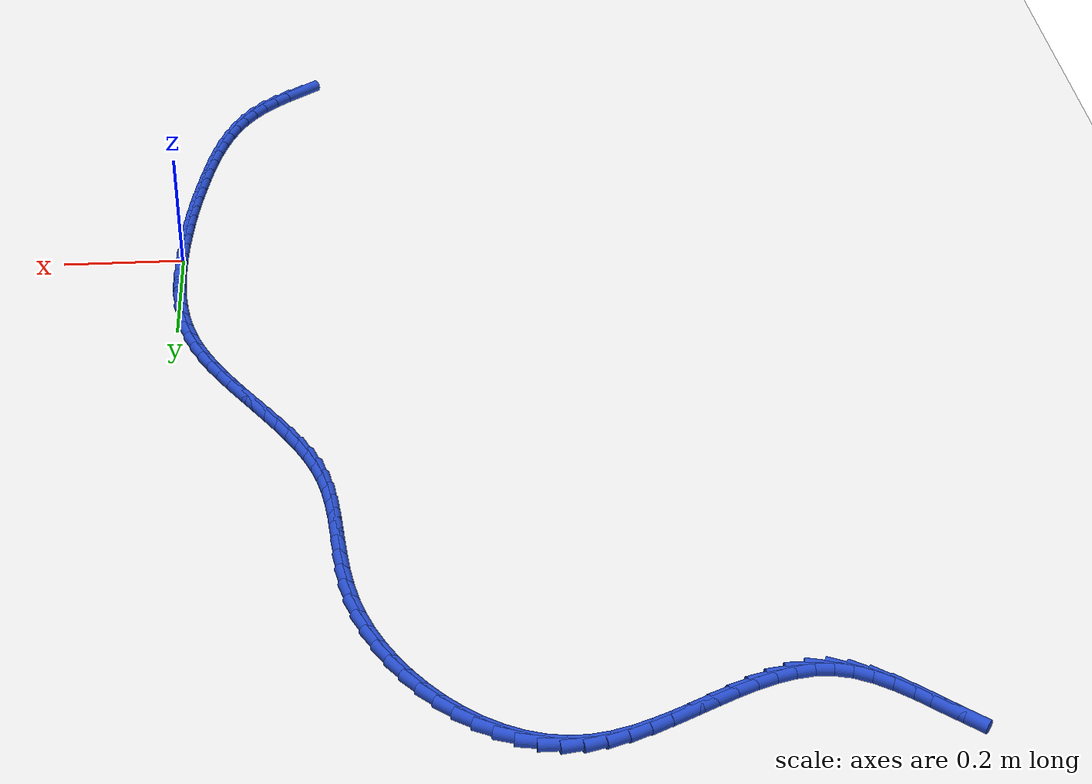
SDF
<sdf version="1.6">
 <world name="default">
  <model name="ground_plane">
   <static>1</static>
   <link name="link">
    <collision name="collision">
     <geometry><plane><normal>0 0 1</normal><size>100 100</size></plane></geometry>
     <surface><friction><ode><mu>100</mu><mu2>50</mu2></ode></friction></surface>
    </collision>
    <visual name="visual">
     <cast_shadows>0</cast_shadows>
     <geometry><plane><normal>0 0 1</normal><size>100 100</size></plane></geometry>
     <material>
      <script><uri>file://media/materials/scripts/gazebo.material</uri><name>Gazebo/WhiteGlow</name></script>
     </material>
    </visual>
   </link>
  </model>
  <model name="line">
   <link name="link_0">
    <pose>8.239936510889834e-18 7.632783294297951e-17 0.01 0 1.57 1.5415442032016824</pose>
    <collision name="collision">
     <geometry><cylinder><radius>0.01</radius><length>0.08</length></cylinder></geometry>
    </collision>
    <visual name="visual">
     <material>
      <script><name>Gazebo/Blue</name><uri>file://media/materials/scripts/gazebo.material</uri></script>
     </material>
     <geometry><cylinder><radius>0.01</radius><length>0.08</length></cylinder></geometry>
    </visual>
   </link>
   <link name="link_1">
    <pose>0.0008711462181971203 0.029772119796999546 0.01 0 1.57 1.569325769403942</pose>
    <collision name="collision">
     <geometry><cylinder><radius>0.01</radius><length>0.08</length></cylinder></geometry>
    </collision>
    <visual name="visual">
     <material>
      <script><name>Gazebo/Blue</name><uri>file://media/materials/scripts/gazebo.material</uri></script>
     </material>
     <geometry><cylinder><radius>0.01</radius><length>0.08</length></cylinder></geometry>
    </visual>
   </link>
   <link name="link_2">
    <pose>0.0009151389869300071 0.0596878084273487 0.01 0 1.57 -1.537992764220976</pose>
    <collision name="collision">
     <geometry><cylinder><radius>0.01</radius><length>0.08</length></cylinder></geometry>
    </collision>
    <visual name="visual">
     <material>
      <script><name>Gazebo/Blue</name><uri>file://media/materials/scripts/gazebo.material</uri></script>
     </material>
     <geometry><cylinder><radius>0.01</radius><length>0.08</length></cylinder></geometry>
    </visual>
   </link>
   <link name="link_3">
    <pose>-6.68812110246541e-05 0.0896134583755524 0.01 0 1.57 -1.4968794196541226</pose>
    <collision name="collision">
     <geometry><cylinder><radius>0.01</radius><length>0.08</length></cylinder></geometry>
    </collision>
    <visual name="visual">
     <material>
      <script><name>Gazebo/Blue</name><uri>file://media/materials/scripts/gazebo.material</uri></script>
     </material>
     <geometry><cylinder><radius>0.01</radius><length>0.08</length></cylinder></geometry>
    </visual>
   </link>
   <link name="link_4">
    <pose>-0.0022737738928901895 0.11941546212611549 0.01 0 1.57 -1.448523730324683</pose>
    <collision name="collision">
     <geometry><cylinder><radius>0.01</radius><length>0.08</length></cylinder></geometry>
    </collision>
    <visual name="visual">
     <material>
      <script><name>Gazebo/Blue</name><uri>file://media/materials/scripts/gazebo.material</uri></script>
     </material>
     <geometry><cylinder><radius>0.01</radius><length>0.08</length></cylinder></geometry>
    </visual>
   </link>
   <link name="link_5">
    <pose>-0.005904398575889921 0.1489602121635429 0.01 0 1.57 -1.3925201223424315</pose>
    <collision name="collision">
     <geometry><cylinder><radius>0.01</radius><length>0.08</length></cylinder></geometry>
    </collision>
    <visual name="visual">
     <material>
      <script><name>Gazebo/Blue</name><uri>file://media/materials/scripts/gazebo.material</uri></script>
     </material>
     <geometry><cylinder><radius>0.01</radius><length>0.08</length></cylinder></geometry>
    </visual>
   </link>
   <link name="link_6">
    <pose>-0.011157614777247174 0.17811410097233937 0.01 0 1.57 -1.3285378208815364</pose>
    <collision name="collision">
     <geometry><cylinder><radius>0.01</radius><length>0.08</length></cylinder></geometry>
    </collision>
    <visual name="visual">
     <material>
      <script><name>Gazebo/Blue</name><uri>file://media/materials/scripts/gazebo.material</uri></script>
     </material>
     <geometry><cylinder><radius>0.01</radius><length>0.08</length></cylinder></geometry>
    </visual>
   </link>
   <link name="link_7">
    <pose>-0.018232282014185273 0.2067435210370099 0.01 0 1.57 -1.25642568086422</pose>
    <collision name="collision">
     <geometry><cylinder><radius>0.01</radius><length>0.08</length></cylinder></geometry>
    </collision>
    <visual name="visual">
     <material>
      <script><name>Gazebo/Blue</name><uri>file://media/materials/scripts/gazebo.material</uri></script>
     </material>
     <geometry><cylinder><radius>0.01</radius><length>0.08</length></cylinder></geometry>
    </visual>
   </link>
   <link name="link_8">
    <pose>-0.02732725980392754 0.23471486484205925 0.01 0 1.57 -1.178316283309899</pose>
    <collision name="collision">
     <geometry><cylinder><radius>0.01</radius><length>0.08</length></cylinder></geometry>
    </collision>
    <visual name="visual">
     <material>
      <script><name>Gazebo/Blue</name><uri>file://media/materials/scripts/gazebo.material</uri></script>
     </material>
     <geometry><cylinder><radius>0.01</radius><length>0.08</length></cylinder></geometry>
    </visual>
   </link>
   <link name="link_9">
    <pose>-0.03858830310602625 0.2619182802103138 0.01 0 1.57 -1.1078305133833755</pose>
    <collision name="collision">
     <geometry><cylinder><radius>0.01</radius><length>0.08</length></cylinder></geometry>
    </collision>
    <visual name="visual">
     <material>
      <script><name>Gazebo/Blue</name><uri>file://media/materials/scripts/gazebo.material</uri></script>
     </material>
     <geometry><cylinder><radius>0.01</radius><length>0.08</length></cylinder></geometry>
    </visual>
   </link>
   <link name="link_10">
    <pose>-0.051807631303384505 0.2884020625436457 0.01 0 1.57 -1.0505280170624138</pose>
    <collision name="collision">
     <geometry><cylinder><radius>0.01</radius><length>0.08</length></cylinder></geometry>
    </collision>
    <visual name="visual">
     <material>
      <script><name>Gazebo/Blue</name><uri>file://media/materials/scripts/gazebo.material</uri></script>
     </material>
     <geometry><cylinder><radius>0.01</radius><length>0.08</length></cylinder></geometry>
    </visual>
   </link>
   <link name="link_11">
    <pose>-0.06663305832135749 0.31427910434538053 0.01 0 1.57 -1.0061491479166482</pose>
    <collision name="collision">
     <geometry><cylinder><radius>0.01</radius><length>0.08</length></cylinder></geometry>
    </collision>
    <visual name="visual">
     <material>
      <script><name>Gazebo/Blue</name><uri>file://media/materials/scripts/gazebo.material</uri></script>
     </material>
     <geometry><cylinder><radius>0.01</radius><length>0.08</length></cylinder></geometry>
    </visual>
   </link>
   <link name="link_12">
    <pose>-0.08271196913370554 0.3396624900023791 0.01 0 1.57 -0.974225262000205</pose>
    <collision name="collision">
     <geometry><cylinder><radius>0.01</radius><length>0.08</length></cylinder></geometry>
    </collision>
    <visual name="visual">
     <material>
      <script><name>Gazebo/Blue</name><uri>file://media/materials/scripts/gazebo.material</uri></script>
     </material>
     <geometry><cylinder><radius>0.01</radius><length>0.08</length></cylinder></geometry>
    </visual>
   </link>
   <link name="link_13">
    <pose>-0.09969174871418904 0.36466530390150226 0.01 0 1.57 -0.9543062040659545</pose>
    <collision name="collision">
     <geometry><cylinder><radius>0.01</radius><length>0.08</length></cylinder></geometry>
    </collision>
    <visual name="visual">
     <material>
      <script><name>Gazebo/Blue</name><uri>file://media/materials/scripts/gazebo.material</uri></script>
     </material>
     <geometry><cylinder><radius>0.01</radius><length>0.08</length></cylinder></geometry>
    </visual>
   </link>
   <link name="link_14">
    <pose>-0.11721978203656837 0.3894006304296106 0.01 0 1.57 -0.946092884319966</pose>
    <collision name="collision">
     <geometry><cylinder><radius>0.01</radius><length>0.08</length></cylinder></geometry>
    </collision>
    <visual name="visual">
     <material>
      <script><name>Gazebo/Blue</name><uri>file://media/materials/scripts/gazebo.material</uri></script>
     </material>
     <geometry><cylinder><radius>0.01</radius><length>0.08</length></cylinder></geometry>
    </visual>
   </link>
   <link name="link_15">
    <pose>-0.1349434540746039 0.41398155397356495 0.01 0 1.57 -0.9495112700554809</pose>
    <collision name="collision">
     <geometry><cylinder><radius>0.01</radius><length>0.08</length></cylinder></geometry>
    </collision>
    <visual name="visual">
     <material>
      <script><name>Gazebo/Blue</name><uri>file://media/materials/scripts/gazebo.material</uri></script>
     </material>
     <geometry><cylinder><radius>0.01</radius><length>0.08</length></cylinder></geometry>
    </visual>
   </link>
   <link name="link_16">
    <pose>-0.15251014980205604 0.43852115892022625 0.01 0 1.57 -0.9647447153172607</pose>
    <collision name="collision">
     <geometry><cylinder><radius>0.01</radius><length>0.08</length></cylinder></geometry>
    </collision>
    <visual name="visual">
     <material>
      <script><name>Gazebo/Blue</name><uri>file://media/materials/scripts/gazebo.material</uri></script>
     </material>
     <geometry><cylinder><radius>0.01</radius><length>0.08</length></cylinder></geometry>
    </visual>
   </link>
   <link name="link_17">
    <pose>-0.16956725419268512 0.463132529656455 0.01 0 1.57 -0.9922311869009011</pose>
    <collision name="collision">
     <geometry><cylinder><radius>0.01</radius><length>0.08</length></cylinder></geometry>
    </collision>
    <visual name="visual">
     <material>
      <script><name>Gazebo/Blue</name><uri>file://media/materials/scripts/gazebo.material</uri></script>
     </material>
     <geometry><cylinder><radius>0.01</radius><length>0.08</length></cylinder></geometry>
    </visual>
   </link>
   <link name="link_18">
    <pose>-0.1857621522202515 0.487928750569112 0.01 0 1.57 -1.0326189504476706</pose>
    <collision name="collision">
     <geometry><cylinder><radius>0.01</radius><length>0.08</length></cylinder></geometry>
    </collision>
    <visual name="visual">
     <material>
      <script><name>Gazebo/Blue</name><uri>file://media/materials/scripts/gazebo.material</uri></script>
     </material>
     <geometry><cylinder><radius>0.01</radius><length>0.08</length></cylinder></geometry>
    </visual>
   </link>
   <link name="link_19">
    <pose>-0.20074222885851556 0.5130229060450582 0.01 0 1.57 -1.0866603592399513</pose>
    <collision name="collision">
     <geometry><cylinder><radius>0.01</radius><length>0.08</length></cylinder></geometry>
    </collision>
    <visual name="visual">
     <material>
      <script><name>Gazebo/Blue</name><uri>file://media/materials/scripts/gazebo.material</uri></script>
     </material>
     <geometry><cylinder><radius>0.01</radius><length>0.08</length></cylinder></geometry>
    </visual>
   </link>
   <link name="link_20">
    <pose>-0.2141548690812377 0.5385280804711542 0.01 0 1.57 -1.1550121401697506</pose>
    <collision name="collision">
     <geometry><cylinder><radius>0.01</radius><length>0.08</length></cylinder></geometry>
    </collision>
    <visual name="visual">
     <material>
      <script><name>Gazebo/Blue</name><uri>file://media/materials/scripts/gazebo.material</uri></script>
     </material>
     <geometry><cylinder><radius>0.01</radius><length>0.08</length></cylinder></geometry>
    </visual>
   </link>
   <link name="link_21">
    <pose>-0.22564745786217827 0.5645573582342607 0.01 0 1.57 -1.2377594350238477</pose>
    <collision name="collision">
     <geometry><cylinder><radius>0.01</radius><length>0.08</length></cylinder></geometry>
    </collision>
    <visual name="visual">
     <material>
      <script><name>Gazebo/Blue</name><uri>file://media/materials/scripts/gazebo.material</uri></script>
     </material>
     <geometry><cylinder><radius>0.01</radius><length>0.08</length></cylinder></geometry>
    </visual>
   </link>
   <link name="link_22">
    <pose>-0.2348716467486136 0.5912229057309557 0.01 0 1.57 -1.3230352621951371</pose>
    <collision name="collision">
     <geometry><cylinder><radius>0.01</radius><length>0.08</length></cylinder></geometry>
    </collision>
    <visual name="visual">
     <material>
      <script><name>Gazebo/Blue</name><uri>file://media/materials/scripts/gazebo.material</uri></script>
     </material>
     <geometry><cylinder><radius>0.01</radius><length>0.08</length></cylinder></geometry>
    </visual>
   </link>
   <link name="link_23">
    <pose>-0.24178935651056896 0.6185701322445123 0.01 0 1.57 -1.3908075151763792</pose>
    <collision name="collision">
     <geometry><cylinder><radius>0.01</radius><length>0.08</length></cylinder></geometry>
    </collision>
    <visual name="visual">
     <material>
      <script><name>Gazebo/Blue</name><uri>file://media/materials/scripts/gazebo.material</uri></script>
     </material>
     <geometry><cylinder><radius>0.01</radius><length>0.08</length></cylinder></geometry>
    </visual>
   </link>
   <link name="link_24">
    <pose>-0.2468775384871621 0.6465336337659556 0.01 0 1.57 -1.438809202886859</pose>
    <collision name="collision">
     <geometry><cylinder><radius>0.01</radius><length>0.08</length></cylinder></geometry>
    </collision>
    <visual name="visual">
     <material>
      <script><name>Gazebo/Blue</name><uri>file://media/materials/scripts/gazebo.material</uri></script>
     </material>
     <geometry><cylinder><radius>0.01</radius><length>0.08</length></cylinder></geometry>
    </visual>
   </link>
   <link name="link_25">
    <pose>-0.2506616895264971 0.6750375612991638 0.01 0 1.57 -1.4674116010361584</pose>
    <collision name="collision">
     <geometry><cylinder><radius>0.01</radius><length>0.08</length></cylinder></geometry>
    </collision>
    <visual name="visual">
     <material>
      <script><name>Gazebo/Blue</name><uri>file://media/materials/scripts/gazebo.material</uri></script>
     </material>
     <geometry><cylinder><radius>0.01</radius><length>0.08</length></cylinder></geometry>
    </visual>
   </link>
   <link name="link_26">
    <pose>-0.25366730647667785 0.7040060658480147 0.01 0 1.57 -1.477308093582962</pose>
    <collision name="collision">
     <geometry><cylinder><radius>0.01</radius><length>0.08</length></cylinder></geometry>
    </collision>
    <visual name="visual">
     <material>
      <script><name>Gazebo/Blue</name><uri>file://media/materials/scripts/gazebo.material</uri></script>
     </material>
     <geometry><cylinder><radius>0.01</radius><length>0.08</length></cylinder></geometry>
    </visual>
   </link>
   <link name="link_27">
    <pose>-0.2564198861858083 0.7333632984163864 0.01 0 1.57 -1.4691916375751166</pose>
    <collision name="collision">
     <geometry><cylinder><radius>0.01</radius><length>0.08</length></cylinder></geometry>
    </collision>
    <visual name="visual">
     <material>
      <script><name>Gazebo/Blue</name><uri>file://media/materials/scripts/gazebo.material</uri></script>
     </material>
     <geometry><cylinder><radius>0.01</radius><length>0.08</length></cylinder></geometry>
    </visual>
   </link>
   <link name="link_28">
    <pose>-0.2594449255019925 0.7630334100081567 0.01 0 1.57 -1.4436569713619698</pose>
    <collision name="collision">
     <geometry><cylinder><radius>0.01</radius><length>0.08</length></cylinder></geometry>
    </collision>
    <visual name="visual">
     <material>
      <script><name>Gazebo/Blue</name><uri>file://media/materials/scripts/gazebo.material</uri></script>
     </material>
     <geometry><cylinder><radius>0.01</radius><length>0.08</length></cylinder></geometry>
    </visual>
   </link>
   <link name="link_29">
    <pose>-0.26326792127333437 0.7929405516272037 0.01 0 1.57 -1.4012804235069265</pose>
    <collision name="collision">
     <geometry><cylinder><radius>0.01</radius><length>0.08</length></cylinder></geometry>
    </collision>
    <visual name="visual">
     <material>
      <script><name>Gazebo/Blue</name><uri>file://media/materials/scripts/gazebo.material</uri></script>
     </material>
     <geometry><cylinder><radius>0.01</radius><length>0.08</length></cylinder></geometry>
    </visual>
   </link>
   <link name="link_30">
    <pose>-0.26841437034793786 0.8230088742774052 0.01 0 1.57 -1.34283708026321</pose>
    <collision name="collision">
     <geometry><cylinder><radius>0.01</radius><length>0.08</length></cylinder></geometry>
    </collision>
    <visual name="visual">
     <material>
      <script><name>Gazebo/Blue</name><uri>file://media/materials/scripts/gazebo.material</uri></script>
     </material>
     <geometry><cylinder><radius>0.01</radius><length>0.08</length></cylinder></geometry>
    </visual>
   </link>
   <link name="link_31">
    <pose>-0.27540976957390695 0.8531625289626392 0.01 0 1.57 -1.26974281540994</pose>
    <collision name="collision">
     <geometry><cylinder><radius>0.01</radius><length>0.08</length></cylinder></geometry>
    </collision>
    <visual name="visual">
     <material>
      <script><name>Gazebo/Blue</name><uri>file://media/materials/scripts/gazebo.material</uri></script>
     </material>
     <geometry><cylinder><radius>0.01</radius><length>0.08</length></cylinder></geometry>
    </visual>
   </link>
   <link name="link_32">
    <pose>-0.2847745204758506 0.8833236366851134 0.01 0 1.57 -1.1906398646100351</pose>
    <collision name="collision">
     <geometry><cylinder><radius>0.01</radius><length>0.08</length></cylinder></geometry>
    </collision>
    <visual name="visual">
     <material>
      <script><name>Gazebo/Blue</name><uri>file://media/materials/scripts/gazebo.material</uri></script>
     </material>
     <geometry><cylinder><radius>0.01</radius><length>0.08</length></cylinder></geometry>
    </visual>
   </link>
   <link name="link_33">
    <pose>-0.2967549479770834 0.913305124995629 0.01 0 1.57 -1.1150935372289033</pose>
    <collision name="collision">
     <geometry><cylinder><radius>0.01</radius><length>0.08</length></cylinder></geometry>
    </collision>
    <visual name="visual">
     <material>
      <script><name>Gazebo/Blue</name><uri>file://media/materials/scripts/gazebo.material</uri></script>
     </material>
     <geometry><cylinder><radius>0.01</radius><length>0.08</length></cylinder></geometry>
    </visual>
   </link>
   <link name="link_34">
    <pose>-0.3111898179098793 0.9427575479202429 0.01 0 1.57 -1.0418199580308445</pose>
    <collision name="collision">
     <geometry><cylinder><radius>0.01</radius><length>0.08</length></cylinder></geometry>
    </collision>
    <visual name="visual">
     <material>
      <script><name>Gazebo/Blue</name><uri>file://media/materials/scripts/gazebo.material</uri></script>
     </material>
     <geometry><cylinder><radius>0.01</radius><length>0.08</length></cylinder></geometry>
    </visual>
   </link>
   <link name="link_35">
    <pose>-0.3278847797008966 0.9713182657478945 0.01 0 1.57 -0.9688181107099842</pose>
    <collision name="collision">
     <geometry><cylinder><radius>0.01</radius><length>0.08</length></cylinder></geometry>
    </collision>
    <visual name="visual">
     <material>
      <script><name>Gazebo/Blue</name><uri>file://media/materials/scripts/gazebo.material</uri></script>
     </material>
     <geometry><cylinder><radius>0.01</radius><length>0.08</length></cylinder></geometry>
    </visual>
   </link>
   <link name="link_36">
    <pose>-0.3466454827767934 0.9986246387675223 0.01 0 1.57 -0.8941456140368496</pose>
    <collision name="collision">
     <geometry><cylinder><radius>0.01</radius><length>0.08</length></cylinder></geometry>
    </collision>
    <visual name="visual">
     <material>
      <script><name>Gazebo/Blue</name><uri>file://media/materials/scripts/gazebo.material</uri></script>
     </material>
     <geometry><cylinder><radius>0.01</radius><length>0.08</length></cylinder></geometry>
    </visual>
   </link>
   <link name="link_37">
    <pose>-0.3672775765642281 1.024314027268066 0.01 0 1.57 -0.8158247522348239</pose>
    <collision name="collision">
     <geometry><cylinder><radius>0.01</radius><length>0.08</length></cylinder></geometry>
    </collision>
    <visual name="visual">
     <material>
      <script><name>Gazebo/Blue</name><uri>file://media/materials/scripts/gazebo.material</uri></script>
     </material>
     <geometry><cylinder><radius>0.01</radius><length>0.08</length></cylinder></geometry>
    </visual>
   </link>
   <link name="link_38">
    <pose>-0.3895867104898593 1.0480237915384656 0.01 0 1.57 -0.7317658666593437</pose>
    <collision name="collision">
     <geometry><cylinder><radius>0.01</radius><length>0.08</length></cylinder></geometry>
    </collision>
    <visual name="visual">
     <material>
      <script><name>Gazebo/Blue</name><uri>file://media/materials/scripts/gazebo.material</uri></script>
     </material>
     <geometry><cylinder><radius>0.01</radius><length>0.08</length></cylinder></geometry>
    </visual>
   </link>
   <link name="link_39">
    <pose>-0.41337853398034524 1.0693912918676598 0.01 0 1.57 -0.6397258939999189</pose>
    <collision name="collision">
     <geometry><cylinder><radius>0.01</radius><length>0.08</length></cylinder></geometry>
    </collision>
    <visual name="visual">
     <material>
      <script><name>Gazebo/Blue</name><uri>file://media/materials/scripts/gazebo.material</uri></script>
     </material>
     <geometry><cylinder><radius>0.01</radius><length>0.08</length></cylinder></geometry>
    </visual>
   </link>
   <link name="link_40">
    <pose>-0.43845869646234376 1.0880538885445878 0.01 0 1.57 -0.5373394767097778</pose>
    <collision name="collision">
     <geometry><cylinder><radius>0.01</radius><length>0.08</length></cylinder></geometry>
    </collision>
    <visual name="visual">
     <material>
      <script><name>Gazebo/Blue</name><uri>file://media/materials/scripts/gazebo.material</uri></script>
     </material>
     <geometry><cylinder><radius>0.01</radius><length>0.08</length></cylinder></geometry>
    </visual>
   </link>
   <link name="link_41">
    <pose>-0.46463284736251376 1.1036489418581898 0.01 0 1.57 -0.422290613328357</pose>
    <collision name="collision">
     <geometry><cylinder><radius>0.01</radius><length>0.08</length></cylinder></geometry>
    </collision>
    <visual name="visual">
     <material>
      <script><name>Gazebo/Blue</name><uri>file://media/materials/scripts/gazebo.material</uri></script>
     </material>
     <geometry><cylinder><radius>0.01</radius><length>0.08</length></cylinder></geometry>
    </visual>
   </link>
   <link name="link_42">
    <pose>-0.4917066361075134 1.1158138120974044 0.01 0 1.57 -0.29272202244233986</pose>
    <collision name="collision">
     <geometry><cylinder><radius>0.01</radius><length>0.08</length></cylinder></geometry>
    </collision>
    <visual name="visual">
     <material>
      <script><name>Gazebo/Blue</name><uri>file://media/materials/scripts/gazebo.material</uri></script>
     </material>
     <geometry><cylinder><radius>0.01</radius><length>0.08</length></cylinder></geometry>
    </visual>
   </link>
   <link name="link_43">
    <pose>-0.5194857121240012 1.1241858595511716 0.01 0 1.57 -0.14795929010274467</pose>
    <collision name="collision">
     <geometry><cylinder><radius>0.01</radius><length>0.08</length></cylinder></geometry>
    </collision>
    <visual name="visual">
     <material>
      <script><name>Gazebo/Blue</name><uri>file://media/materials/scripts/gazebo.material</uri></script>
     </material>
     <geometry><cylinder><radius>0.01</radius><length>0.08</length></cylinder></geometry>
    </visual>
   </link>
   <link name="link_44">
    <pose>-0.5477757248386348 1.12840244450843 0.01 0 1.57 0.010063030693174177</pose>
    <collision name="collision">
     <geometry><cylinder><radius>0.01</radius><length>0.08</length></cylinder></geometry>
    </collision>
    <visual name="visual">
     <material>
      <script><name>Gazebo/Blue</name><uri>file://media/materials/scripts/gazebo.material</uri></script>
     </material>
     <geometry><cylinder><radius>0.01</radius><length>0.08</length></cylinder></geometry>
    </visual>
   </link>
   <link name="link_45">
    <pose>-0.5763838578656565 1.1281145502698087 0.01 0 1.57 0.15999588747395185</pose>
    <collision name="collision">
     <geometry><cylinder><radius>0.01</radius><length>0.08</length></cylinder></geometry>
    </collision>
    <visual name="visual">
     <material>
      <script><name>Gazebo/Blue</name><uri>file://media/materials/scripts/gazebo.material</uri></script>
     </material>
     <geometry><cylinder><radius>0.01</radius><length>0.08</length></cylinder></geometry>
    </visual>
   </link>
   <link name="link_46">
    <pose>-0.6051730989071227 1.1234686795554232 0.01 0 1.57 0.2774837882327957</pose>
    <collision name="collision">
     <geometry><cylinder><radius>0.01</radius><length>0.08</length></cylinder></geometry>
    </collision>
    <visual name="visual">
     <material>
      <script><name>Gazebo/Blue</name><uri>file://media/materials/scripts/gazebo.material</uri></script>
     </material>
     <geometry><cylinder><radius>0.01</radius><length>0.08</length></cylinder></geometry>
    </visual>
   </link>
   <link name="link_47">
    <pose>-0.6340767821019241 1.1152359851228304 0.01 0 1.57 0.36330452308582345</pose>
    <collision name="collision">
     <geometry><cylinder><radius>0.01</radius><length>0.08</length></cylinder></geometry>
    </collision>
    <visual name="visual">
     <material>
      <script><name>Gazebo/Blue</name><uri>file://media/materials/scripts/gazebo.material</uri></script>
     </material>
     <geometry><cylinder><radius>0.01</radius><length>0.08</length></cylinder></geometry>
    </visual>
   </link>
   <link name="link_48">
    <pose>-0.6630327332318705 1.1042275038380627 0.01 0 1.57 0.4213449314231461</pose>
    <collision name="collision">
     <geometry><cylinder><radius>0.01</radius><length>0.08</length></cylinder></geometry>
    </collision>
    <visual name="visual">
     <material>
      <script><name>Gazebo/Blue</name><uri>file://media/materials/scripts/gazebo.material</uri></script>
     </material>
     <geometry><cylinder><radius>0.01</radius><length>0.08</length></cylinder></geometry>
    </visual>
   </link>
   <link name="link_49">
    <pose>-0.691978778078772 1.0912542725671512 0.01 0 1.57 0.45502066951421105</pose>
    <collision name="collision">
     <geometry><cylinder><radius>0.01</radius><length>0.08</length></cylinder></geometry>
    </collision>
    <visual name="visual">
     <material>
      <script><name>Gazebo/Blue</name><uri>file://media/materials/scripts/gazebo.material</uri></script>
     </material>
     <geometry><cylinder><radius>0.01</radius><length>0.08</length></cylinder></geometry>
    </visual>
   </link>
   <link name="link_50">
    <pose>-0.7208527424244382 1.0771273281761264 0.01 0 1.57 0.4664208378407781</pose>
    <collision name="collision">
     <geometry><cylinder><radius>0.01</radius><length>0.08</length></cylinder></geometry>
    </collision>
    <visual name="visual">
     <material>
      <script><name>Gazebo/Blue</name><uri>file://media/materials/scripts/gazebo.material</uri></script>
     </material>
     <geometry><cylinder><radius>0.01</radius><length>0.08</length></cylinder></geometry>
    </visual>
   </link>
   <link name="link_51">
    <pose>-0.7495924520506789 1.0626577075310202 0.01 0 1.57 0.4560408181119525</pose>
    <collision name="collision">
     <geometry><cylinder><radius>0.01</radius><length>0.08</length></cylinder></geometry>
    </collision>
    <visual name="visual">
     <material>
      <script><name>Gazebo/Blue</name><uri>file://media/materials/scripts/gazebo.material</uri></script>
     </material>
     <geometry><cylinder><radius>0.01</radius><length>0.08</length></cylinder></geometry>
    </visual>
   </link>
   <link name="link_52">
    <pose>-0.7781357327393037 1.048656447497864 0.01 0 1.57 0.42267037942850205</pose>
    <collision name="collision">
     <geometry><cylinder><radius>0.01</radius><length>0.08</length></cylinder></geometry>
    </collision>
    <visual name="visual">
     <material>
      <script><name>Gazebo/Blue</name><uri>file://media/materials/scripts/gazebo.material</uri></script>
     </material>
     <geometry><cylinder><radius>0.01</radius><length>0.08</length></cylinder></geometry>
    </visual>
   </link>
   <link name="link_53">
    <pose>-0.8064204102721225 1.0359345849426886 0.01 0 1.57 0.363307807847391</pose>
    <collision name="collision">
     <geometry><cylinder><radius>0.01</radius><length>0.08</length></cylinder></geometry>
    </collision>
    <visual name="visual">
     <material>
      <script><name>Gazebo/Blue</name><uri>file://media/materials/scripts/gazebo.material</uri></script>
     </material>
     <geometry><cylinder><radius>0.01</radius><length>0.08</length></cylinder></geometry>
    </visual>
   </link>
   <link name="link_54">
    <pose>-0.8343843104309454 1.0253031567315258 0.01 0 1.57 0.2732538306652313</pose>
    <collision name="collision">
     <geometry><cylinder><radius>0.01</radius><length>0.08</length></cylinder></geometry>
    </collision>
    <visual name="visual">
     <material>
      <script><name>Gazebo/Blue</name><uri>file://media/materials/scripts/gazebo.material</uri></script>
     </material>
     <geometry><cylinder><radius>0.01</radius><length>0.08</length></cylinder></geometry>
    </visual>
   </link>
   <link name="link_55">
    <pose>-0.8619652589975817 1.0175731997304065 0.01 0 1.57 0.1469819663390464</pose>
    <collision name="collision">
     <geometry><cylinder><radius>0.01</radius><length>0.08</length></cylinder></geometry>
    </collision>
    <visual name="visual">
     <material>
      <script><name>Gazebo/Blue</name><uri>file://media/materials/scripts/gazebo.material</uri></script>
     </material>
     <geometry><cylinder><radius>0.01</radius><length>0.08</length></cylinder></geometry>
    </visual>
   </link>
   <link name="link_56">
    <pose>-0.8891010817538416 1.0135557508053623 0.01 0 1.57 -0.01900349854624457</pose>
    <collision name="collision">
     <geometry><cylinder><radius>0.01</radius><length>0.08</length></cylinder></geometry>
    </collision>
    <visual name="visual">
     <material>
      <script><name>Gazebo/Blue</name><uri>file://media/materials/scripts/gazebo.material</uri></script>
     </material>
     <geometry><cylinder><radius>0.01</radius><length>0.08</length></cylinder></geometry>
    </visual>
   </link>
   <link name="link_57">
    <pose>-0.9157296044815342 1.0140618468224238 0.01 0 1.57 -0.2191437274482809</pose>
    <collision name="collision">
     <geometry><cylinder><radius>0.01</radius><length>0.08</length></cylinder></geometry>
    </collision>
    <visual name="visual">
     <material>
      <script><name>Gazebo/Blue</name><uri>file://media/materials/scripts/gazebo.material</uri></script>
     </material>
     <geometry><cylinder><radius>0.01</radius><length>0.08</length></cylinder></geometry>
    </visual>
   </link>
   <link name="link_58">
    <pose>-0.941792147345468 1.0198665094631543 0.01 0 1.57 -0.4059484354433069</pose>
    <collision name="collision">
     <geometry><cylinder><radius>0.01</radius><length>0.08</length></cylinder></geometry>
    </collision>
    <visual name="visual">
     <material>
      <script><name>Gazebo/Blue</name><uri>file://media/materials/scripts/gazebo.material</uri></script>
     </material>
     <geometry><cylinder><radius>0.01</radius><length>0.08</length></cylinder></geometry>
    </visual>
   </link>
   <link name="link_59">
    <pose>-0.9673179994123623 1.0308381007120917 0.01 0 1.57 -0.5400663090289796</pose>
    <collision name="collision">
     <geometry><cylinder><radius>0.01</radius><length>0.08</length></cylinder></geometry>
    </collision>
    <visual name="visual">
     <material>
      <script><name>Gazebo/Blue</name><uri>file://media/materials/scripts/gazebo.material</uri></script>
     </material>
     <geometry><cylinder><radius>0.01</radius><length>0.08</length></cylinder></geometry>
    </visual>
   </link>
   <link name="link_60">
    <pose>-0.9924288590657139 1.0458925573065727 0.01 0 1.57 -0.6276295036116257</pose>
    <collision name="collision">
     <geometry><cylinder><radius>0.01</radius><length>0.08</length></cylinder></geometry>
    </collision>
    <visual name="visual">
     <material>
      <script><name>Gazebo/Blue</name><uri>file://media/materials/scripts/gazebo.material</uri></script>
     </material>
     <geometry><cylinder><radius>0.01</radius><length>0.08</length></cylinder></geometry>
    </visual>
   </link>
   <link name="link_61">
    <pose>-1.0172508078301612 1.0639006407307046 0.01 0 1.57 -0.6773362717830139</pose>
    <collision name="collision">
     <geometry><cylinder><radius>0.01</radius><length>0.08</length></cylinder></geometry>
    </collision>
    <visual name="visual">
     <material>
      <script><name>Gazebo/Blue</name><uri>file://media/materials/scripts/gazebo.material</uri></script>
     </material>
     <geometry><cylinder><radius>0.01</radius><length>0.08</length></cylinder></geometry>
    </visual>
   </link>
   <link name="link_62">
    <pose>-1.0419099272303436 1.0837331124685974 0.01 0 1.57 -0.6947757357571528</pose>
    <collision name="collision">
     <geometry><cylinder><radius>0.01</radius><length>0.08</length></cylinder></geometry>
    </collision>
    <visual name="visual">
     <material>
      <script><name>Gazebo/Blue</name><uri>file://media/materials/scripts/gazebo.material</uri></script>
     </material>
     <geometry><cylinder><radius>0.01</radius><length>0.08</length></cylinder></geometry>
    </visual>
   </link>
   <link name="link_63">
    <pose>-1.0665329073555323 1.104253825519677 0.01 0 1.57 -0.6780584342296228</pose>
    <collision name="collision">
     <geometry><cylinder><radius>0.01</radius><length>0.08</length></cylinder></geometry>
    </collision>
    <visual name="visual">
     <material>
      <script><name>Gazebo/Blue</name><uri>file://media/materials/scripts/gazebo.material</uri></script>
     </material>
     <geometry><cylinder><radius>0.01</radius><length>0.08</length></cylinder></geometry>
    </visual>
   </link>
   <link name="link_240">
    <pose>-0.19453984823792264 -0.535022167568121 0.01 0 1.57 0.633385960767259</pose>
    <collision name="collision">
     <geometry><cylinder><radius>0.01</radius><length>0.08</length></cylinder></geometry>
    </collision>
    <visual name="visual">
     <material>
      <script><name>Gazebo/Blue</name><uri>file://media/materials/scripts/gazebo.material</uri></script>
     </material>
     <geometry><cylinder><radius>0.01</radius><length>0.08</length></cylinder></geometry>
    </visual>
   </link>
   <link name="link_241">
    <pose>-0.1706508650374999 -0.5174801635252632 0.01 0 1.57 0.6863253540116759</pose>
    <collision name="collision">
     <geometry><cylinder><radius>0.01</radius><length>0.08</length></cylinder></geometry>
    </collision>
    <visual name="visual">
     <material>
      <script><name>Gazebo/Blue</name><uri>file://media/materials/scripts/gazebo.material</uri></script>
     </material>
     <geometry><cylinder><radius>0.01</radius><length>0.08</length></cylinder></geometry>
    </visual>
   </link>
   <link name="link_242">
    <pose>-0.14803651589890715 -0.4989550084621626 0.01 0 1.57 0.7634377527419833</pose>
    <collision name="collision">
     <geometry><cylinder><radius>0.01</radius><length>0.08</length></cylinder></geometry>
    </collision>
    <visual name="visual">
     <material>
      <script><name>Gazebo/Blue</name><uri>file://media/materials/scripts/gazebo.material</uri></script>
     </material>
     <geometry><cylinder><radius>0.01</radius><length>0.08</length></cylinder></geometry>
    </visual>
   </link>
   <link name="link_243">
    <pose>-0.12719358286333662 -0.47900798367574143 0.01 0 1.57 0.8650550825346504</pose>
    <collision name="collision">
     <geometry><cylinder><radius>0.01</radius><length>0.08</length></cylinder></geometry>
    </collision>
    <visual name="visual">
     <material>
      <script><name>Gazebo/Blue</name><uri>file://media/materials/scripts/gazebo.material</uri></script>
     </material>
     <geometry><cylinder><radius>0.01</radius><length>0.08</length></cylinder></geometry>
    </visual>
   </link>
   <link name="link_244">
    <pose>-0.108614128639891 -0.45720496511737607 0.01 0 1.57 0.9762601473436052</pose>
    <collision name="collision">
     <geometry><cylinder><radius>0.01</radius><length>0.08</length></cylinder></geometry>
    </collision>
    <visual name="visual">
     <material>
      <script><name>Gazebo/Blue</name><uri>file://media/materials/scripts/gazebo.material</uri></script>
     </material>
     <geometry><cylinder><radius>0.01</radius><length>0.08</length></cylinder></geometry>
    </visual>
   </link>
   <link name="link_245">
    <pose>-0.09250886918466175 -0.43338574273471225 0.01 0 1.57 1.074257098125475</pose>
    <collision name="collision">
     <geometry><cylinder><radius>0.01</radius><length>0.08</length></cylinder></geometry>
    </collision>
    <visual name="visual">
     <material>
      <script><name>Gazebo/Blue</name><uri>file://media/materials/scripts/gazebo.material</uri></script>
     </material>
     <geometry><cylinder><radius>0.01</radius><length>0.08</length></cylinder></geometry>
    </visual>
   </link>
   <link name="link_246">
    <pose>-0.07865347237776997 -0.4078136612375659 0.01 0 1.57 1.1570322925395085</pose>
    <collision name="collision">
     <geometry><cylinder><radius>0.01</radius><length>0.08</length></cylinder></geometry>
    </collision>
    <visual name="visual">
     <material>
      <script><name>Gazebo/Blue</name><uri>file://media/materials/scripts/gazebo.material</uri></script>
     </material>
     <geometry><cylinder><radius>0.01</radius><length>0.08</length></cylinder></geometry>
    </visual>
   </link>
   <link name="link_247">
    <pose>-0.06678630382682786 -0.3807883821384973 0.01 0 1.57 1.225360094293963</pose>
    <collision name="collision">
     <geometry><cylinder><radius>0.01</radius><length>0.08</length></cylinder></geometry>
    </collision>
    <visual name="visual">
     <material>
      <script><name>Gazebo/Blue</name><uri>file://media/materials/scripts/gazebo.material</uri></script>
     </material>
     <geometry><cylinder><radius>0.01</radius><length>0.08</length></cylinder></geometry>
    </visual>
   </link>
   <link name="link_248">
    <pose>-0.05664572913944814 -0.3526095669500673 0.01 0 1.57 1.2804203382431456</pose>
    <collision name="collision">
     <geometry><cylinder><radius>0.01</radius><length>0.08</length></cylinder></geometry>
    </collision>
    <visual name="visual">
     <material>
      <script><name>Gazebo/Blue</name><uri>file://media/materials/scripts/gazebo.material</uri></script>
     </material>
     <geometry><cylinder><radius>0.01</radius><length>0.08</length></cylinder></geometry>
    </visual>
   </link>
   <link name="link_249">
    <pose>-0.04797011392324356 -0.3235768771848372 0.01 0 1.57 1.3234153637516153</pose>
    <collision name="collision">
     <geometry><cylinder><radius>0.01</radius><length>0.08</length></cylinder></geometry>
    </collision>
    <visual name="visual">
     <material>
      <script><name>Gazebo/Blue</name><uri>file://media/materials/scripts/gazebo.material</uri></script>
     </material>
     <geometry><cylinder><radius>0.01</radius><length>0.08</length></cylinder></geometry>
    </visual>
   </link>
   <link name="link_250">
    <pose>-0.04049782378582683 -0.2939899743553678 0.01 0 1.57 1.3553496823230597</pose>
    <collision name="collision">
     <geometry><cylinder><radius>0.01</radius><length>0.08</length></cylinder></geometry>
    </collision>
    <visual name="visual">
     <material>
      <script><name>Gazebo/Blue</name><uri>file://media/materials/scripts/gazebo.material</uri></script>
     </material>
     <geometry><cylinder><radius>0.01</radius><length>0.08</length></cylinder></geometry>
    </visual>
   </link>
   <link name="link_251">
    <pose>-0.03396722433481065 -0.26414851997422006 0.01 0 1.57 1.376920745768624</pose>
    <collision name="collision">
     <geometry><cylinder><radius>0.01</radius><length>0.08</length></cylinder></geometry>
    </collision>
    <visual name="visual">
     <material>
      <script><name>Gazebo/Blue</name><uri>file://media/materials/scripts/gazebo.material</uri></script>
     </material>
     <geometry><cylinder><radius>0.01</radius><length>0.08</length></cylinder></geometry>
    </visual>
   </link>
   <link name="link_252">
    <pose>-0.028116900507891493 -0.23435188800495857 0.01 0 1.57 1.3914330226484437</pose>
    <collision name="collision">
     <geometry><cylinder><radius>0.01</radius><length>0.08</length></cylinder></geometry>
    </collision>
    <visual name="visual">
     <material>
      <script><name>Gazebo/Blue</name><uri>file://media/materials/scripts/gazebo.material</uri></script>
     </material>
     <geometry><cylinder><radius>0.01</radius><length>0.08</length></cylinder></geometry>
    </visual>
   </link>
   <link name="link_253">
    <pose>-0.022759274154684612 -0.20480264977704307 0.01 0 1.57 1.4062327381674968</pose>
    <collision name="collision">
     <geometry><cylinder><radius>0.01</radius><length>0.08</length></cylinder></geometry>
    </collision>
    <visual name="visual">
     <material>
      <script><name>Gazebo/Blue</name><uri>file://media/materials/scripts/gazebo.material</uri></script>
     </material>
     <geometry><cylinder><radius>0.01</radius><length>0.08</length></cylinder></geometry>
    </visual>
   </link>
   <link name="link_254">
    <pose>-0.017887535744469545 -0.17546638297958383 0.01 0 1.57 1.4223583576078955</pose>
    <collision name="collision">
     <geometry><cylinder><radius>0.01</radius><length>0.08</length></cylinder></geometry>
    </collision>
    <visual name="visual">
     <material>
      <script><name>Gazebo/Blue</name><uri>file://media/materials/scripts/gazebo.material</uri></script>
     </material>
     <geometry><cylinder><radius>0.01</radius><length>0.08</length></cylinder></geometry>
    </visual>
   </link>
   <link name="link_255">
    <pose>-0.01352202898999617 -0.14627306650125202 0.01 0 1.57 1.4397224714409653</pose>
    <collision name="collision">
     <geometry><cylinder><radius>0.01</radius><length>0.08</length></cylinder></geometry>
    </collision>
    <visual name="visual">
     <material>
      <script><name>Gazebo/Blue</name><uri>file://media/materials/scripts/gazebo.material</uri></script>
     </material>
     <geometry><cylinder><radius>0.01</radius><length>0.08</length></cylinder></geometry>
    </visual>
   </link>
   <link name="link_256">
    <pose>-0.009683097604014356 -0.117152679230719 0.01 0 1.57 1.4582147331413542</pose>
    <collision name="collision">
     <geometry><cylinder><radius>0.01</radius><length>0.08</length></cylinder></geometry>
    </collision>
    <visual name="visual">
     <material>
      <script><name>Gazebo/Blue</name><uri>file://media/materials/scripts/gazebo.material</uri></script>
     </material>
     <geometry><cylinder><radius>0.01</radius><length>0.08</length></cylinder></geometry>
    </visual>
   </link>
   <link name="link_257">
    <pose>-0.006391085299273961 -0.08803520005665601 0.01 0 1.57 1.4777035806914107</pose>
    <collision name="collision">
     <geometry><cylinder><radius>0.01</radius><length>0.08</length></cylinder></geometry>
    </collision>
    <visual name="visual">
     <material>
      <script><name>Gazebo/Blue</name><uri>file://media/materials/scripts/gazebo.material</uri></script>
     </material>
     <geometry><cylinder><radius>0.01</radius><length>0.08</length></cylinder></geometry>
    </visual>
   </link>
   <link name="link_258">
    <pose>-0.003666335788524859 -0.05885060786773431 0.01 0 1.57 1.4980389942788774</pose>
    <collision name="collision">
     <geometry><cylinder><radius>0.01</radius><length>0.08</length></cylinder></geometry>
    </collision>
    <visual name="visual">
     <material>
      <script><name>Gazebo/Blue</name><uri>file://media/materials/scripts/gazebo.material</uri></script>
     </material>
     <geometry><cylinder><radius>0.01</radius><length>0.08</length></cylinder></geometry>
    </visual>
   </link>
   <link name="link_259">
    <pose>-0.0015291927845169175 -0.029528881552625258 0.01 0 1.57 1.5190562035554103</pose>
    <collision name="collision">
     <geometry><cylinder><radius>0.01</radius><length>0.08</length></cylinder></geometry>
    </collision>
    <visual name="visual">
     <material>
      <script><name>Gazebo/Blue</name><uri>file://media/materials/scripts/gazebo.material</uri></script>
     </material>
     <geometry><cylinder><radius>0.01</radius><length>0.08</length></cylinder></geometry>
    </visual>
   </link>
   <link name="link_260">
    <pose>-2.3852447794681098e-18 -9.020562075079397e-17 0.01 0 1.57 1.5405801653661002</pose>
    <collision name="collision">
     <geometry><cylinder><radius>0.01</radius><length>0.08</length></cylinder></geometry>
    </collision>
    <visual name="visual">
     <material>
      <script><name>Gazebo/Blue</name><uri>file://media/materials/scripts/gazebo.material</uri></script>
     </material>
     <geometry><cylinder><radius>0.01</radius><length>0.08</length></cylinder></geometry>
    </visual>
   </link>
   <link name="link_261">
    <pose>0.00090089885227602 0.029806057901469903 0.01 0 1.57 1.5624305527084854</pose>
    <collision name="collision">
     <geometry><cylinder><radius>0.01</radius><length>0.08</length></cylinder></geometry>
    </collision>
    <visual name="visual">
     <material>
      <script><name>Gazebo/Blue</name><uri>file://media/materials/scripts/gazebo.material</uri></script>
     </material>
     <geometry><cylinder><radius>0.01</radius><length>0.08</length></cylinder></geometry>
    </visual>
   </link>
   <link name="link_262">
    <pose>0.001153160059561279 0.05995931326311342 0.01 0 1.57 1.5515663214836086</pose>
    <collision name="collision">
     <geometry><cylinder><radius>0.01</radius><length>0.08</length></cylinder></geometry>
    </collision>
    <visual name="visual">
     <material>
      <script><name>Gazebo/Blue</name><uri>file://media/materials/scripts/gazebo.material</uri></script>
     </material>
     <geometry><cylinder><radius>0.01</radius><length>0.08</length></cylinder></geometry>
    </visual>
   </link>
  </model>
 </world>
</sdf>
